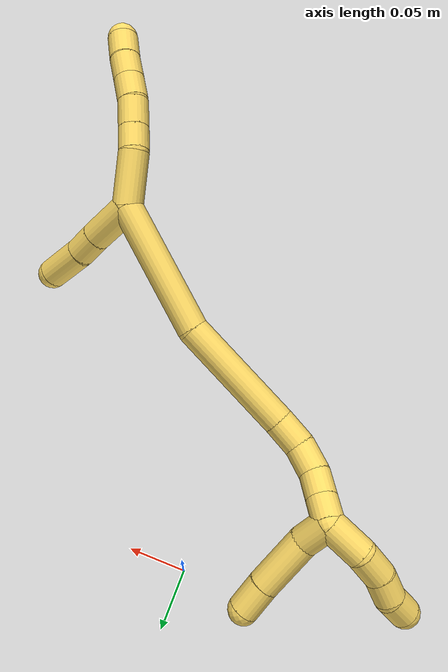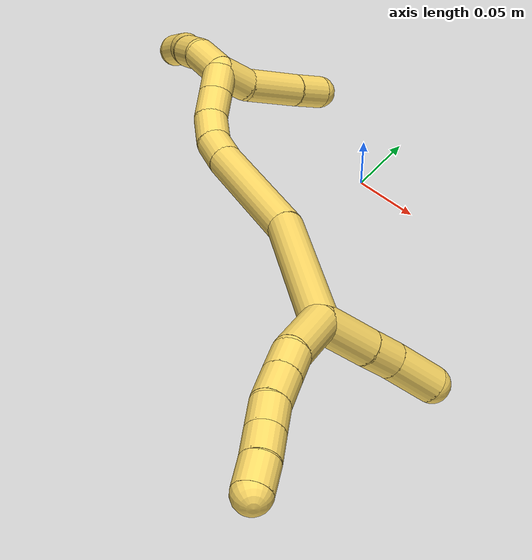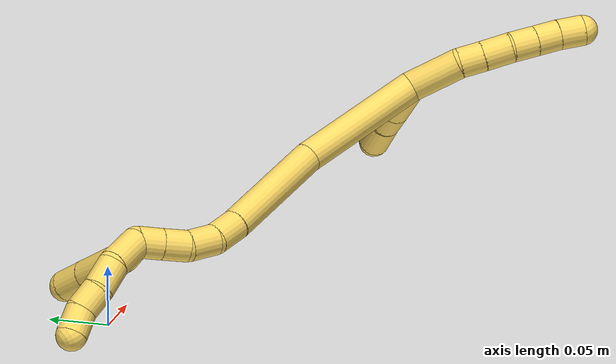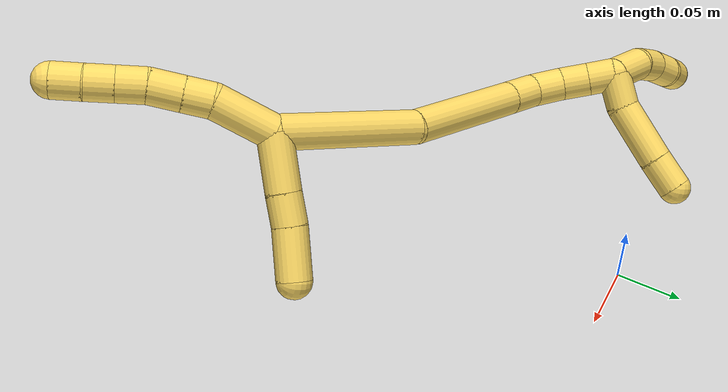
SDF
<sdf version="1.7">
 <world name="default">
  <model name="5">
   <static>0</static>
   <link name="5">
    <collision name="collision-cylinder-e_1_2_8">
     <pose>-0.010449 -0.002814 0.019463 0.143584 -0.488385 -0.035834</pose>
     <geometry><cylinder><radius>0.0125</radius><length>0.044538</length></cylinder></geometry>
     <surface>
      <friction><ode><mu>1.16</mu><mu2>1.16</mu2><slip1>0</slip1><slip2>0</slip2></ode></friction>
      <contact><ode><kp>1e+06</kp><kd>1</kd><max_vel>0</max_vel><min_depth>0.001</min_depth></ode></contact>
     </surface>
    </collision>
    <visual name="visual-cylinder-e_1_2_8">
     <pose>-0.010449 -0.002814 0.019463 0.143584 -0.488385 -0.035834</pose>
     <geometry><cylinder><radius>0.0125</radius><length>0.044538</length></cylinder></geometry>
     <material><ambient>1 0.858824 0.4 1</ambient></material>
    </visual>
    <collision name="collision-cylinder-e_2_8_9">
     <pose>-0.023469 -0.008439 0.048267 0.292337 -0.257773 -0.038156</pose>
     <geometry><cylinder><radius>0.0125</radius><length>0.020175</length></cylinder></geometry>
     <surface>
      <friction><ode><mu>1.16</mu><mu2>1.16</mu2><slip1>0</slip1><slip2>0</slip2></ode></friction>
      <contact><ode><kp>1e+06</kp><kd>1</kd><max_vel>0</max_vel><min_depth>0.001</min_depth></ode></contact>
     </surface>
    </collision>
    <visual name="visual-cylinder-e_2_8_9">
     <pose>-0.023469 -0.008439 0.048267 0.292337 -0.257773 -0.038156</pose>
     <geometry><cylinder><radius>0.0125</radius><length>0.020175</length></cylinder></geometry>
     <material><ambient>1 0.858824 0.4 1</ambient></material>
    </visual>
    <collision name="collision-cylinder-e_3_9_10">
     <pose>-0.029051 -0.014309 0.068675 0.269673 -0.256386 -0.034969</pose>
     <geometry><cylinder><radius>0.0125</radius><length>0.023743</length></cylinder></geometry>
     <surface>
      <friction><ode><mu>1.16</mu><mu2>1.16</mu2><slip1>0</slip1><slip2>0</slip2></ode></friction>
      <contact><ode><kp>1e+06</kp><kd>1</kd><max_vel>0</max_vel><min_depth>0.001</min_depth></ode></contact>
     </surface>
    </collision>
    <visual name="visual-cylinder-e_3_9_10">
     <pose>-0.029051 -0.014309 0.068675 0.269673 -0.256386 -0.034969</pose>
     <geometry><cylinder><radius>0.0125</radius><length>0.023743</length></cylinder></geometry>
     <material><ambient>1 0.858824 0.4 1</ambient></material>
    </visual>
    <collision name="collision-cylinder-e_4_10_11">
     <pose>-0.032858 -0.020296 0.089588 0.289045 -0.077452 -0.011278</pose>
     <geometry><cylinder><radius>0.0125</radius><length>0.020602</length></cylinder></geometry>
     <surface>
      <friction><ode><mu>1.16</mu><mu2>1.16</mu2><slip1>0</slip1><slip2>0</slip2></ode></friction>
      <contact><ode><kp>1e+06</kp><kd>1</kd><max_vel>0</max_vel><min_depth>0.001</min_depth></ode></contact>
     </surface>
    </collision>
    <visual name="visual-cylinder-e_4_10_11">
     <pose>-0.032858 -0.020296 0.089588 0.289045 -0.077452 -0.011278</pose>
     <geometry><cylinder><radius>0.0125</radius><length>0.020602</length></cylinder></geometry>
     <material><ambient>1 0.858824 0.4 1</ambient></material>
    </visual>
    <collision name="collision-cylinder-e_5_11_12">
     <pose>-0.03441 -0.025985 0.10905 0.279575 -0.075274 -0.010596</pose>
     <geometry><cylinder><radius>0.0125</radius><length>0.020071</length></cylinder></geometry>
     <surface>
      <friction><ode><mu>1.16</mu><mu2>1.16</mu2><slip1>0</slip1><slip2>0</slip2></ode></friction>
      <contact><ode><kp>1e+06</kp><kd>1</kd><max_vel>0</max_vel><min_depth>0.001</min_depth></ode></contact>
     </surface>
    </collision>
    <visual name="visual-cylinder-e_5_11_12">
     <pose>-0.03441 -0.025985 0.10905 0.279575 -0.075274 -0.010596</pose>
     <geometry><cylinder><radius>0.0125</radius><length>0.020071</length></cylinder></geometry>
     <material><ambient>1 0.858824 0.4 1</ambient></material>
    </visual>
    <collision name="collision-cylinder-e_6_12_6">
     <pose>-0.03631 -0.032473 0.128349 0.367454 -0.109987 -0.020458</pose>
     <geometry><cylinder><radius>0.0125</radius><length>0.020871</length></cylinder></geometry>
     <surface>
      <friction><ode><mu>1.16</mu><mu2>1.16</mu2><slip1>0</slip1><slip2>0</slip2></ode></friction>
      <contact><ode><kp>1e+06</kp><kd>1</kd><max_vel>0</max_vel><min_depth>0.001</min_depth></ode></contact>
     </surface>
    </collision>
    <visual name="visual-cylinder-e_6_12_6">
     <pose>-0.03631 -0.032473 0.128349 0.367454 -0.109987 -0.020458</pose>
     <geometry><cylinder><radius>0.0125</radius><length>0.020871</length></cylinder></geometry>
     <material><ambient>1 0.858824 0.4 1</ambient></material>
    </visual>
    <collision name="collision-cylinder-e_1_2_13">
     <pose>0.019694 -0.003472 -0.003527 2.36409 1.3246 2.17428</pose>
     <geometry><cylinder><radius>0.0125</radius><length>0.040612</length></cylinder></geometry>
     <surface>
      <friction><ode><mu>1.16</mu><mu2>1.16</mu2><slip1>0</slip1><slip2>0</slip2></ode></friction>
      <contact><ode><kp>1e+06</kp><kd>1</kd><max_vel>0</max_vel><min_depth>0.001</min_depth></ode></contact>
     </surface>
    </collision>
    <visual name="visual-cylinder-e_1_2_13">
     <pose>0.019694 -0.003472 -0.003527 2.36409 1.3246 2.17428</pose>
     <geometry><cylinder><radius>0.0125</radius><length>0.040612</length></cylinder></geometry>
     <material><ambient>1 0.858824 0.4 1</ambient></material>
    </visual>
    <collision name="collision-cylinder-e_2_13_14">
     <pose>0.050245 -0.008877 -0.009451 2.46275 1.29435 2.26748</pose>
     <geometry><cylinder><radius>0.0125</radius><length>0.022572</length></cylinder></geometry>
     <surface>
      <friction><ode><mu>1.16</mu><mu2>1.16</mu2><slip1>0</slip1><slip2>0</slip2></ode></friction>
      <contact><ode><kp>1e+06</kp><kd>1</kd><max_vel>0</max_vel><min_depth>0.001</min_depth></ode></contact>
     </surface>
    </collision>
    <visual name="visual-cylinder-e_2_13_14">
     <pose>0.050245 -0.008877 -0.009451 2.46275 1.29435 2.26748</pose>
     <geometry><cylinder><radius>0.0125</radius><length>0.022572</length></cylinder></geometry>
     <material><ambient>1 0.858824 0.4 1</ambient></material>
    </visual>
    <collision name="collision-cylinder-e_3_14_5">
     <pose>0.07915 -0.013944 -0.013676 2.09892 1.37252 1.91852</pose>
     <geometry><cylinder><radius>0.0125</radius><length>0.036816</length></cylinder></geometry>
     <surface>
      <friction><ode><mu>1.16</mu><mu2>1.16</mu2><slip1>0</slip1><slip2>0</slip2></ode></friction>
      <contact><ode><kp>1e+06</kp><kd>1</kd><max_vel>0</max_vel><min_depth>0.001</min_depth></ode></contact>
     </surface>
    </collision>
    <visual name="visual-cylinder-e_3_14_5">
     <pose>0.07915 -0.013944 -0.013676 2.09892 1.37252 1.91852</pose>
     <geometry><cylinder><radius>0.0125</radius><length>0.036816</length></cylinder></geometry>
     <material><ambient>1 0.858824 0.4 1</ambient></material>
    </visual>
    <collision name="collision-cylinder-e_1_2_15">
     <pose>-0.005018 -0.002804 -0.055021 3.09068 -0.090827 -2.12013</pose>
     <geometry><cylinder><radius>0.0125</radius><length>0.11064</length></cylinder></geometry>
     <surface>
      <friction><ode><mu>1.16</mu><mu2>1.16</mu2><slip1>0</slip1><slip2>0</slip2></ode></friction>
      <contact><ode><kp>1e+06</kp><kd>1</kd><max_vel>0</max_vel><min_depth>0.001</min_depth></ode></contact>
     </surface>
    </collision>
    <visual name="visual-cylinder-e_1_2_15">
     <pose>-0.005018 -0.002804 -0.055021 3.09068 -0.090827 -2.12013</pose>
     <geometry><cylinder><radius>0.0125</radius><length>0.11064</length></cylinder></geometry>
     <material><ambient>1 0.858824 0.4 1</ambient></material>
    </visual>
    <collision name="collision-cylinder-e_2_15_16">
     <pose>-0.025477 -0.014043 -0.156001 2.96008 -0.319171 -2.11238</pose>
     <geometry><cylinder><radius>0.0125</radius><length>0.098426</length></cylinder></geometry>
     <surface>
      <friction><ode><mu>1.16</mu><mu2>1.16</mu2><slip1>0</slip1><slip2>0</slip2></ode></friction>
      <contact><ode><kp>1e+06</kp><kd>1</kd><max_vel>0</max_vel><min_depth>0.001</min_depth></ode></contact>
     </surface>
    </collision>
    <visual name="visual-cylinder-e_2_15_16">
     <pose>-0.025477 -0.014043 -0.156001 2.96008 -0.319171 -2.11238</pose>
     <geometry><cylinder><radius>0.0125</radius><length>0.098426</length></cylinder></geometry>
     <material><ambient>1 0.858824 0.4 1</ambient></material>
    </visual>
    <collision name="collision-cylinder-e_3_16_17">
     <pose>-0.044857 -0.023319 -0.213763 3.0705 -0.321241 -2.70948</pose>
     <geometry><cylinder><radius>0.0125</radius><length>0.024941</length></cylinder></geometry>
     <surface>
      <friction><ode><mu>1.16</mu><mu2>1.16</mu2><slip1>0</slip1><slip2>0</slip2></ode></friction>
      <contact><ode><kp>1e+06</kp><kd>1</kd><max_vel>0</max_vel><min_depth>0.001</min_depth></ode></contact>
     </surface>
    </collision>
    <visual name="visual-cylinder-e_3_16_17">
     <pose>-0.044857 -0.023319 -0.213763 3.0705 -0.321241 -2.70948</pose>
     <geometry><cylinder><radius>0.0125</radius><length>0.024941</length></cylinder></geometry>
     <material><ambient>1 0.858824 0.4 1</ambient></material>
    </visual>
    <collision name="collision-cylinder-e_4_17_18">
     <pose>-0.051238 -0.021033 -0.237083 -2.87654 -0.202013 1.30008</pose>
     <geometry><cylinder><radius>0.0125</radius><length>0.024363</length></cylinder></geometry>
     <surface>
      <friction><ode><mu>1.16</mu><mu2>1.16</mu2><slip1>0</slip1><slip2>0</slip2></ode></friction>
      <contact><ode><kp>1e+06</kp><kd>1</kd><max_vel>0</max_vel><min_depth>0.001</min_depth></ode></contact>
     </surface>
    </collision>
    <visual name="visual-cylinder-e_4_17_18">
     <pose>-0.051238 -0.021033 -0.237083 -2.87654 -0.202013 1.30008</pose>
     <geometry><cylinder><radius>0.0125</radius><length>0.024363</length></cylinder></geometry>
     <material><ambient>1 0.858824 0.4 1</ambient></material>
    </visual>
    <collision name="collision-cylinder-e_5_18_19">
     <pose>-0.054546 -0.011957 -0.257439 -2.5492 -0.080865 0.263585</pose>
     <geometry><cylinder><radius>0.0125</radius><length>0.02138</length></cylinder></geometry>
     <surface>
      <friction><ode><mu>1.16</mu><mu2>1.16</mu2><slip1>0</slip1><slip2>0</slip2></ode></friction>
      <contact><ode><kp>1e+06</kp><kd>1</kd><max_vel>0</max_vel><min_depth>0.001</min_depth></ode></contact>
     </surface>
    </collision>
    <visual name="visual-cylinder-e_5_18_19">
     <pose>-0.054546 -0.011957 -0.257439 -2.5492 -0.080865 0.263585</pose>
     <geometry><cylinder><radius>0.0125</radius><length>0.02138</length></cylinder></geometry>
     <material><ambient>1 0.858824 0.4 1</ambient></material>
    </visual>
    <collision name="collision-cylinder-e_6_19_1">
     <pose>-0.056303 -0.000238 -0.274551 -2.53251 -0.088366 0.279487</pose>
     <geometry><cylinder><radius>0.0125</radius><length>0.020251</length></cylinder></geometry>
     <surface>
      <friction><ode><mu>1.16</mu><mu2>1.16</mu2><slip1>0</slip1><slip2>0</slip2></ode></friction>
      <contact><ode><kp>1e+06</kp><kd>1</kd><max_vel>0</max_vel><min_depth>0.001</min_depth></ode></contact>
     </surface>
    </collision>
    <visual name="visual-cylinder-e_6_19_1">
     <pose>-0.056303 -0.000238 -0.274551 -2.53251 -0.088366 0.279487</pose>
     <geometry><cylinder><radius>0.0125</radius><length>0.020251</length></cylinder></geometry>
     <material><ambient>1 0.858824 0.4 1</ambient></material>
    </visual>
    <collision name="collision-cylinder-e_1_1_20">
     <pose>-0.04466 0.003845 -0.286674 2.72861 1.24723 2.57489</pose>
     <geometry><cylinder><radius>0.0125</radius><length>0.026445</length></cylinder></geometry>
     <surface>
      <friction><ode><mu>1.16</mu><mu2>1.16</mu2><slip1>0</slip1><slip2>0</slip2></ode></friction>
      <contact><ode><kp>1e+06</kp><kd>1</kd><max_vel>0</max_vel><min_depth>0.001</min_depth></ode></contact>
     </surface>
    </collision>
    <visual name="visual-cylinder-e_1_1_20">
     <pose>-0.04466 0.003845 -0.286674 2.72861 1.24723 2.57489</pose>
     <geometry><cylinder><radius>0.0125</radius><length>0.026445</length></cylinder></geometry>
     <material><ambient>1 0.858824 0.4 1</ambient></material>
    </visual>
    <collision name="collision-cylinder-e_2_20_21">
     <pose>-0.011106 0.005031 -0.301079 -2.87579 1.09091 -2.70793</pose>
     <geometry><cylinder><radius>0.0125</radius><length>0.047389</length></cylinder></geometry>
     <surface>
      <friction><ode><mu>1.16</mu><mu2>1.16</mu2><slip1>0</slip1><slip2>0</slip2></ode></friction>
      <contact><ode><kp>1e+06</kp><kd>1</kd><max_vel>0</max_vel><min_depth>0.001</min_depth></ode></contact>
     </surface>
    </collision>
    <visual name="visual-cylinder-e_2_20_21">
     <pose>-0.011106 0.005031 -0.301079 -2.87579 1.09091 -2.70793</pose>
     <geometry><cylinder><radius>0.0125</radius><length>0.047389</length></cylinder></geometry>
     <material><ambient>1 0.858824 0.4 1</ambient></material>
    </visual>
    <collision name="collision-cylinder-e_3_21_4">
     <pose>0.021176 0.009387 -0.318124 -2.91703 1.03706 -2.75141</pose>
     <geometry><cylinder><radius>0.0125</radius><length>0.026166</length></cylinder></geometry>
     <surface>
      <friction><ode><mu>1.16</mu><mu2>1.16</mu2><slip1>0</slip1><slip2>0</slip2></ode></friction>
      <contact><ode><kp>1e+06</kp><kd>1</kd><max_vel>0</max_vel><min_depth>0.001</min_depth></ode></contact>
     </surface>
    </collision>
    <visual name="visual-cylinder-e_3_21_4">
     <pose>0.021176 0.009387 -0.318124 -2.91703 1.03706 -2.75141</pose>
     <geometry><cylinder><radius>0.0125</radius><length>0.026166</length></cylinder></geometry>
     <material><ambient>1 0.858824 0.4 1</ambient></material>
    </visual>
    <collision name="collision-cylinder-e_1_1_22">
     <pose>-0.063321 0.002407 -0.297616 2.93335 -0.38488 -2.15708</pose>
     <geometry><cylinder><radius>0.0125</radius><length>0.032626</length></cylinder></geometry>
     <surface>
      <friction><ode><mu>1.16</mu><mu2>1.16</mu2><slip1>0</slip1><slip2>0</slip2></ode></friction>
      <contact><ode><kp>1e+06</kp><kd>1</kd><max_vel>0</max_vel><min_depth>0.001</min_depth></ode></contact>
     </surface>
    </collision>
    <visual name="visual-cylinder-e_1_1_22">
     <pose>-0.063321 0.002407 -0.297616 2.93335 -0.38488 -2.15708</pose>
     <geometry><cylinder><radius>0.0125</radius><length>0.032626</length></cylinder></geometry>
     <material><ambient>1 0.858824 0.4 1</ambient></material>
    </visual>
    <collision name="collision-cylinder-e_2_22_23">
     <pose>-0.071083 -0.0059 -0.32339 2.70076 -0.134005 -0.581978</pose>
     <geometry><cylinder><radius>0.0125</radius><length>0.024502</length></cylinder></geometry>
     <surface>
      <friction><ode><mu>1.16</mu><mu2>1.16</mu2><slip1>0</slip1><slip2>0</slip2></ode></friction>
      <contact><ode><kp>1e+06</kp><kd>1</kd><max_vel>0</max_vel><min_depth>0.001</min_depth></ode></contact>
     </surface>
    </collision>
    <visual name="visual-cylinder-e_2_22_23">
     <pose>-0.071083 -0.0059 -0.32339 2.70076 -0.134005 -0.581978</pose>
     <geometry><cylinder><radius>0.0125</radius><length>0.024502</length></cylinder></geometry>
     <material><ambient>1 0.858824 0.4 1</ambient></material>
    </visual>
    <collision name="collision-cylinder-e_3_23_24">
     <pose>-0.071875 -0.014516 -0.344381 2.81102 0.079653 0.468972</pose>
     <geometry><cylinder><radius>0.0125</radius><length>0.021235</length></cylinder></geometry>
     <surface>
      <friction><ode><mu>1.16</mu><mu2>1.16</mu2><slip1>0</slip1><slip2>0</slip2></ode></friction>
      <contact><ode><kp>1e+06</kp><kd>1</kd><max_vel>0</max_vel><min_depth>0.001</min_depth></ode></contact>
     </surface>
    </collision>
    <visual name="visual-cylinder-e_3_23_24">
     <pose>-0.071875 -0.014516 -0.344381 2.81102 0.079653 0.468972</pose>
     <geometry><cylinder><radius>0.0125</radius><length>0.021235</length></cylinder></geometry>
     <material><ambient>1 0.858824 0.4 1</ambient></material>
    </visual>
    <collision name="collision-cylinder-e_4_24_3">
     <pose>-0.07209 -0.024136 -0.363204 2.52963 -0.098123 -0.308392</pose>
     <geometry><cylinder><radius>0.0125</radius><length>0.021636</length></cylinder></geometry>
     <surface>
      <friction><ode><mu>1.16</mu><mu2>1.16</mu2><slip1>0</slip1><slip2>0</slip2></ode></friction>
      <contact><ode><kp>1e+06</kp><kd>1</kd><max_vel>0</max_vel><min_depth>0.001</min_depth></ode></contact>
     </surface>
    </collision>
    <visual name="visual-cylinder-e_4_24_3">
     <pose>-0.07209 -0.024136 -0.363204 2.52963 -0.098123 -0.308392</pose>
     <geometry><cylinder><radius>0.0125</radius><length>0.021636</length></cylinder></geometry>
     <material><ambient>1 0.858824 0.4 1</ambient></material>
    </visual>
    <collision name="collision-sphere-3">
     <pose>-0.07315 -0.030321 -0.372017 0 -0 0</pose>
     <geometry><sphere><radius>0.0125</radius></sphere></geometry>
     <surface>
      <friction><ode><mu>1.16</mu><mu2>1.16</mu2><slip1>0</slip1><slip2>0</slip2></ode></friction>
      <contact><ode><kp>1e+06</kp><kd>1</kd><max_vel>0</max_vel><min_depth>0.001</min_depth></ode></contact>
     </surface>
    </collision>
    <visual name="visual-sphere-3">
     <pose>-0.07315 -0.030321 -0.372017 0 -0 0</pose>
     <geometry><sphere><radius>0.0125</radius></sphere></geometry>
     <material><ambient>1 0.858824 0.4 1</ambient></material>
    </visual>
    <collision name="collision-sphere-24">
     <pose>-0.07103 -0.017951 -0.354392 0 -0 0</pose>
     <geometry><sphere><radius>0.0125</radius></sphere></geometry>
     <surface>
      <friction><ode><mu>1.16</mu><mu2>1.16</mu2><slip1>0</slip1><slip2>0</slip2></ode></friction>
      <contact><ode><kp>1e+06</kp><kd>1</kd><max_vel>0</max_vel><min_depth>0.001</min_depth></ode></contact>
     </surface>
    </collision>
    <visual name="visual-sphere-24">
     <pose>-0.07103 -0.017951 -0.354392 0 -0 0</pose>
     <geometry><sphere><radius>0.0125</radius></sphere></geometry>
     <material><ambient>1 0.858824 0.4 1</ambient></material>
    </visual>
    <collision name="collision-sphere-23">
     <pose>-0.07272 -0.011081 -0.334371 0 -0 0</pose>
     <geometry><sphere><radius>0.0125</radius></sphere></geometry>
     <surface>
      <friction><ode><mu>1.16</mu><mu2>1.16</mu2><slip1>0</slip1><slip2>0</slip2></ode></friction>
      <contact><ode><kp>1e+06</kp><kd>1</kd><max_vel>0</max_vel><min_depth>0.001</min_depth></ode></contact>
     </surface>
    </collision>
    <visual name="visual-sphere-23">
     <pose>-0.07272 -0.011081 -0.334371 0 -0 0</pose>
     <geometry><sphere><radius>0.0125</radius></sphere></geometry>
     <material><ambient>1 0.858824 0.4 1</ambient></material>
    </visual>
    <collision name="collision-sphere-22">
     <pose>-0.069446 -0.000719 -0.312409 0 -0 0</pose>
     <geometry><sphere><radius>0.0125</radius></sphere></geometry>
     <surface>
      <friction><ode><mu>1.16</mu><mu2>1.16</mu2><slip1>0</slip1><slip2>0</slip2></ode></friction>
      <contact><ode><kp>1e+06</kp><kd>1</kd><max_vel>0</max_vel><min_depth>0.001</min_depth></ode></contact>
     </surface>
    </collision>
    <visual name="visual-sphere-22">
     <pose>-0.069446 -0.000719 -0.312409 0 -0 0</pose>
     <geometry><sphere><radius>0.0125</radius></sphere></geometry>
     <material><ambient>1 0.858824 0.4 1</ambient></material>
    </visual>
    <collision name="collision-sphere-4">
     <pose>0.032439 0.010869 -0.324613 0 -0 0</pose>
     <geometry><sphere><radius>0.0125</radius></sphere></geometry>
     <surface>
      <friction><ode><mu>1.16</mu><mu2>1.16</mu2><slip1>0</slip1><slip2>0</slip2></ode></friction>
      <contact><ode><kp>1e+06</kp><kd>1</kd><max_vel>0</max_vel><min_depth>0.001</min_depth></ode></contact>
     </surface>
    </collision>
    <visual name="visual-sphere-4">
     <pose>0.032439 0.010869 -0.324613 0 -0 0</pose>
     <geometry><sphere><radius>0.0125</radius></sphere></geometry>
     <material><ambient>1 0.858824 0.4 1</ambient></material>
    </visual>
    <collision name="collision-sphere-21">
     <pose>0.009912 0.007905 -0.311635 0 -0 0</pose>
     <geometry><sphere><radius>0.0125</radius></sphere></geometry>
     <surface>
      <friction><ode><mu>1.16</mu><mu2>1.16</mu2><slip1>0</slip1><slip2>0</slip2></ode></friction>
      <contact><ode><kp>1e+06</kp><kd>1</kd><max_vel>0</max_vel><min_depth>0.001</min_depth></ode></contact>
     </surface>
    </collision>
    <visual name="visual-sphere-21">
     <pose>0.009912 0.007905 -0.311635 0 -0 0</pose>
     <geometry><sphere><radius>0.0125</radius></sphere></geometry>
     <material><ambient>1 0.858824 0.4 1</ambient></material>
    </visual>
    <collision name="collision-sphere-20">
     <pose>-0.032124 0.002158 -0.290524 0 -0 0</pose>
     <geometry><sphere><radius>0.0125</radius></sphere></geometry>
     <surface>
      <friction><ode><mu>1.16</mu><mu2>1.16</mu2><slip1>0</slip1><slip2>0</slip2></ode></friction>
      <contact><ode><kp>1e+06</kp><kd>1</kd><max_vel>0</max_vel><min_depth>0.001</min_depth></ode></contact>
     </surface>
    </collision>
    <visual name="visual-sphere-20">
     <pose>-0.032124 0.002158 -0.290524 0 -0 0</pose>
     <geometry><sphere><radius>0.0125</radius></sphere></geometry>
     <material><ambient>1 0.858824 0.4 1</ambient></material>
    </visual>
    <collision name="collision-sphere-12">
     <pose>-0.035165 -0.028746 0.118669 0 -0 0</pose>
     <geometry><sphere><radius>0.0125</radius></sphere></geometry>
     <surface>
      <friction><ode><mu>1.16</mu><mu2>1.16</mu2><slip1>0</slip1><slip2>0</slip2></ode></friction>
      <contact><ode><kp>1e+06</kp><kd>1</kd><max_vel>0</max_vel><min_depth>0.001</min_depth></ode></contact>
     </surface>
    </collision>
    <visual name="visual-sphere-12">
     <pose>-0.035165 -0.028746 0.118669 0 -0 0</pose>
     <geometry><sphere><radius>0.0125</radius></sphere></geometry>
     <material><ambient>1 0.858824 0.4 1</ambient></material>
    </visual>
    <collision name="collision-sphere-11">
     <pose>-0.033655 -0.023223 0.099431 0 -0 0</pose>
     <geometry><sphere><radius>0.0125</radius></sphere></geometry>
     <surface>
      <friction><ode><mu>1.16</mu><mu2>1.16</mu2><slip1>0</slip1><slip2>0</slip2></ode></friction>
      <contact><ode><kp>1e+06</kp><kd>1</kd><max_vel>0</max_vel><min_depth>0.001</min_depth></ode></contact>
     </surface>
    </collision>
    <visual name="visual-sphere-11">
     <pose>-0.033655 -0.023223 0.099431 0 -0 0</pose>
     <geometry><sphere><radius>0.0125</radius></sphere></geometry>
     <material><ambient>1 0.858824 0.4 1</ambient></material>
    </visual>
    <collision name="collision-sphere-10">
     <pose>-0.032061 -0.017369 0.079744 0 -0 0</pose>
     <geometry><sphere><radius>0.0125</radius></sphere></geometry>
     <surface>
      <friction><ode><mu>1.16</mu><mu2>1.16</mu2><slip1>0</slip1><slip2>0</slip2></ode></friction>
      <contact><ode><kp>1e+06</kp><kd>1</kd><max_vel>0</max_vel><min_depth>0.001</min_depth></ode></contact>
     </surface>
    </collision>
    <visual name="visual-sphere-10">
     <pose>-0.032061 -0.017369 0.079744 0 -0 0</pose>
     <geometry><sphere><radius>0.0125</radius></sphere></geometry>
     <material><ambient>1 0.858824 0.4 1</ambient></material>
    </visual>
    <collision name="collision-sphere-9">
     <pose>-0.02604 -0.01125 0.057607 0 -0 0</pose>
     <geometry><sphere><radius>0.0125</radius></sphere></geometry>
     <surface>
      <friction><ode><mu>1.16</mu><mu2>1.16</mu2><slip1>0</slip1><slip2>0</slip2></ode></friction>
      <contact><ode><kp>1e+06</kp><kd>1</kd><max_vel>0</max_vel><min_depth>0.001</min_depth></ode></contact>
     </surface>
    </collision>
    <visual name="visual-sphere-9">
     <pose>-0.02604 -0.01125 0.057607 0 -0 0</pose>
     <geometry><sphere><radius>0.0125</radius></sphere></geometry>
     <material><ambient>1 0.858824 0.4 1</ambient></material>
    </visual>
    <collision name="collision-sphere-2">
     <geometry><sphere><radius>0.0125</radius></sphere></geometry>
     <surface>
      <friction><ode><mu>1.16</mu><mu2>1.16</mu2><slip1>0</slip1><slip2>0</slip2></ode></friction>
      <contact><ode><kp>1e+06</kp><kd>1</kd><max_vel>0</max_vel><min_depth>0.001</min_depth></ode></contact>
     </surface>
    </collision>
    <visual name="visual-sphere-2">
     <geometry><sphere><radius>0.0125</radius></sphere></geometry>
     <material><ambient>1 0.858824 0.4 1</ambient></material>
    </visual>
    <collision name="collision-sphere-19">
     <pose>-0.055409 -0.006008 -0.266279 0 -0 0</pose>
     <geometry><sphere><radius>0.0125</radius></sphere></geometry>
     <surface>
      <friction><ode><mu>1.16</mu><mu2>1.16</mu2><slip1>0</slip1><slip2>0</slip2></ode></friction>
      <contact><ode><kp>1e+06</kp><kd>1</kd><max_vel>0</max_vel><min_depth>0.001</min_depth></ode></contact>
     </surface>
    </collision>
    <visual name="visual-sphere-19">
     <pose>-0.055409 -0.006008 -0.266279 0 -0 0</pose>
     <geometry><sphere><radius>0.0125</radius></sphere></geometry>
     <material><ambient>1 0.858824 0.4 1</ambient></material>
    </visual>
    <collision name="collision-sphere-8">
     <pose>-0.020897 -0.005628 0.038926 0 -0 0</pose>
     <geometry><sphere><radius>0.0125</radius></sphere></geometry>
     <surface>
      <friction><ode><mu>1.16</mu><mu2>1.16</mu2><slip1>0</slip1><slip2>0</slip2></ode></friction>
      <contact><ode><kp>1e+06</kp><kd>1</kd><max_vel>0</max_vel><min_depth>0.001</min_depth></ode></contact>
     </surface>
    </collision>
    <visual name="visual-sphere-8">
     <pose>-0.020897 -0.005628 0.038926 0 -0 0</pose>
     <geometry><sphere><radius>0.0125</radius></sphere></geometry>
     <material><ambient>1 0.858824 0.4 1</ambient></material>
    </visual>
    <collision name="collision-sphere-6">
     <pose>-0.037456 -0.036199 0.138029 0 -0 0</pose>
     <geometry><sphere><radius>0.0125</radius></sphere></geometry>
     <surface>
      <friction><ode><mu>1.16</mu><mu2>1.16</mu2><slip1>0</slip1><slip2>0</slip2></ode></friction>
      <contact><ode><kp>1e+06</kp><kd>1</kd><max_vel>0</max_vel><min_depth>0.001</min_depth></ode></contact>
     </surface>
    </collision>
    <visual name="visual-sphere-6">
     <pose>-0.037456 -0.036199 0.138029 0 -0 0</pose>
     <geometry><sphere><radius>0.0125</radius></sphere></geometry>
     <material><ambient>1 0.858824 0.4 1</ambient></material>
    </visual>
    <collision name="collision-sphere-13">
     <pose>0.039387 -0.006943 -0.007054 0 -0 0</pose>
     <geometry><sphere><radius>0.0125</radius></sphere></geometry>
     <surface>
      <friction><ode><mu>1.16</mu><mu2>1.16</mu2><slip1>0</slip1><slip2>0</slip2></ode></friction>
      <contact><ode><kp>1e+06</kp><kd>1</kd><max_vel>0</max_vel><min_depth>0.001</min_depth></ode></contact>
     </surface>
    </collision>
    <visual name="visual-sphere-13">
     <pose>0.039387 -0.006943 -0.007054 0 -0 0</pose>
     <geometry><sphere><radius>0.0125</radius></sphere></geometry>
     <material><ambient>1 0.858824 0.4 1</ambient></material>
    </visual>
    <collision name="collision-sphere-14">
     <pose>0.061102 -0.010812 -0.011849 0 -0 0</pose>
     <geometry><sphere><radius>0.0125</radius></sphere></geometry>
     <surface>
      <friction><ode><mu>1.16</mu><mu2>1.16</mu2><slip1>0</slip1><slip2>0</slip2></ode></friction>
      <contact><ode><kp>1e+06</kp><kd>1</kd><max_vel>0</max_vel><min_depth>0.001</min_depth></ode></contact>
     </surface>
    </collision>
    <visual name="visual-sphere-14">
     <pose>0.061102 -0.010812 -0.011849 0 -0 0</pose>
     <geometry><sphere><radius>0.0125</radius></sphere></geometry>
     <material><ambient>1 0.858824 0.4 1</ambient></material>
    </visual>
    <collision name="collision-sphere-5">
     <pose>0.097197 -0.017076 -0.015503 0 -0 0</pose>
     <geometry><sphere><radius>0.0125</radius></sphere></geometry>
     <surface>
      <friction><ode><mu>1.16</mu><mu2>1.16</mu2><slip1>0</slip1><slip2>0</slip2></ode></friction>
      <contact><ode><kp>1e+06</kp><kd>1</kd><max_vel>0</max_vel><min_depth>0.001</min_depth></ode></contact>
     </surface>
    </collision>
    <visual name="visual-sphere-5">
     <pose>0.097197 -0.017076 -0.015503 0 -0 0</pose>
     <geometry><sphere><radius>0.0125</radius></sphere></geometry>
     <material><ambient>1 0.858824 0.4 1</ambient></material>
    </visual>
    <collision name="collision-sphere-15">
     <pose>-0.010035 -0.005608 -0.110041 0 -0 0</pose>
     <geometry><sphere><radius>0.0125</radius></sphere></geometry>
     <surface>
      <friction><ode><mu>1.16</mu><mu2>1.16</mu2><slip1>0</slip1><slip2>0</slip2></ode></friction>
      <contact><ode><kp>1e+06</kp><kd>1</kd><max_vel>0</max_vel><min_depth>0.001</min_depth></ode></contact>
     </surface>
    </collision>
    <visual name="visual-sphere-15">
     <pose>-0.010035 -0.005608 -0.110041 0 -0 0</pose>
     <geometry><sphere><radius>0.0125</radius></sphere></geometry>
     <material><ambient>1 0.858824 0.4 1</ambient></material>
    </visual>
    <collision name="collision-sphere-16">
     <pose>-0.040919 -0.022478 -0.20196 0 -0 0</pose>
     <geometry><sphere><radius>0.0125</radius></sphere></geometry>
     <surface>
      <friction><ode><mu>1.16</mu><mu2>1.16</mu2><slip1>0</slip1><slip2>0</slip2></ode></friction>
      <contact><ode><kp>1e+06</kp><kd>1</kd><max_vel>0</max_vel><min_depth>0.001</min_depth></ode></contact>
     </surface>
    </collision>
    <visual name="visual-sphere-16">
     <pose>-0.040919 -0.022478 -0.20196 0 -0 0</pose>
     <geometry><sphere><radius>0.0125</radius></sphere></geometry>
     <material><ambient>1 0.858824 0.4 1</ambient></material>
    </visual>
    <collision name="collision-sphere-17">
     <pose>-0.048794 -0.024159 -0.225566 0 -0 0</pose>
     <geometry><sphere><radius>0.0125</radius></sphere></geometry>
     <surface>
      <friction><ode><mu>1.16</mu><mu2>1.16</mu2><slip1>0</slip1><slip2>0</slip2></ode></friction>
      <contact><ode><kp>1e+06</kp><kd>1</kd><max_vel>0</max_vel><min_depth>0.001</min_depth></ode></contact>
     </surface>
    </collision>
    <visual name="visual-sphere-17">
     <pose>-0.048794 -0.024159 -0.225566 0 -0 0</pose>
     <geometry><sphere><radius>0.0125</radius></sphere></geometry>
     <material><ambient>1 0.858824 0.4 1</ambient></material>
    </visual>
    <collision name="collision-sphere-18">
     <pose>-0.053682 -0.017907 -0.2486 0 -0 0</pose>
     <geometry><sphere><radius>0.0125</radius></sphere></geometry>
     <surface>
      <friction><ode><mu>1.16</mu><mu2>1.16</mu2><slip1>0</slip1><slip2>0</slip2></ode></friction>
      <contact><ode><kp>1e+06</kp><kd>1</kd><max_vel>0</max_vel><min_depth>0.001</min_depth></ode></contact>
     </surface>
    </collision>
    <visual name="visual-sphere-18">
     <pose>-0.053682 -0.017907 -0.2486 0 -0 0</pose>
     <geometry><sphere><radius>0.0125</radius></sphere></geometry>
     <material><ambient>1 0.858824 0.4 1</ambient></material>
    </visual>
    <collision name="collision-sphere-1">
     <pose>-0.057197 0.005532 -0.282823 0 -0 0</pose>
     <geometry><sphere><radius>0.0125</radius></sphere></geometry>
     <surface>
      <friction><ode><mu>1.16</mu><mu2>1.16</mu2><slip1>0</slip1><slip2>0</slip2></ode></friction>
      <contact><ode><kp>1e+06</kp><kd>1</kd><max_vel>0</max_vel><min_depth>0.001</min_depth></ode></contact>
     </surface>
    </collision>
    <visual name="visual-sphere-1">
     <pose>-0.057197 0.005532 -0.282823 0 -0 0</pose>
     <geometry><sphere><radius>0.0125</radius></sphere></geometry>
     <material><ambient>1 0.858824 0.4 1</ambient></material>
    </visual>
    <inertial>
     <pose>-0.019586 -0.00862 -0.12969 0 -0 0</pose>
     <mass>0.75</mass>
     <inertia>
      <ixx>-0.000253</ixx>
      <ixy>0</ixy>
      <ixz>0</ixz>
      <iyy>-2.4e-05</iyy>
      <iyz>0</iyz>
      <izz>2.1e-05</izz>
     </inertia>
    </inertial>
   </link>
   <pose>0.131357 -0.216629 0.178775 1.13396 0.529397 0.562453</pose>
  </model>
 </world>
</sdf>
